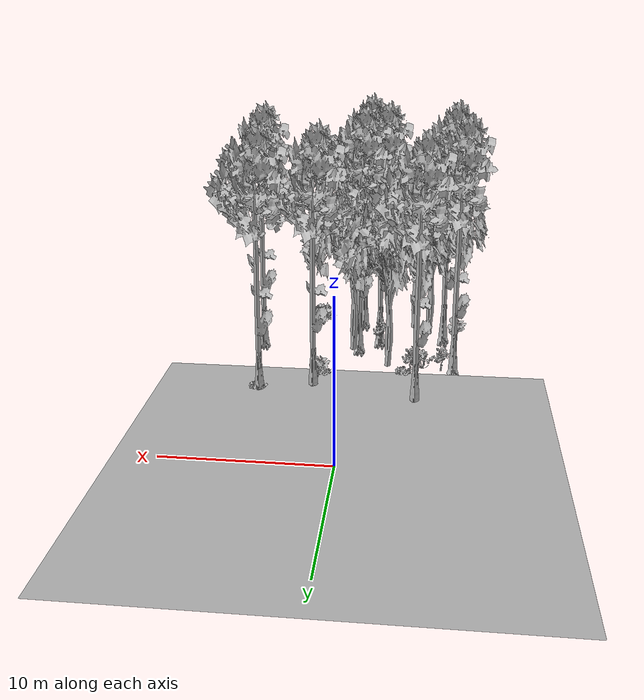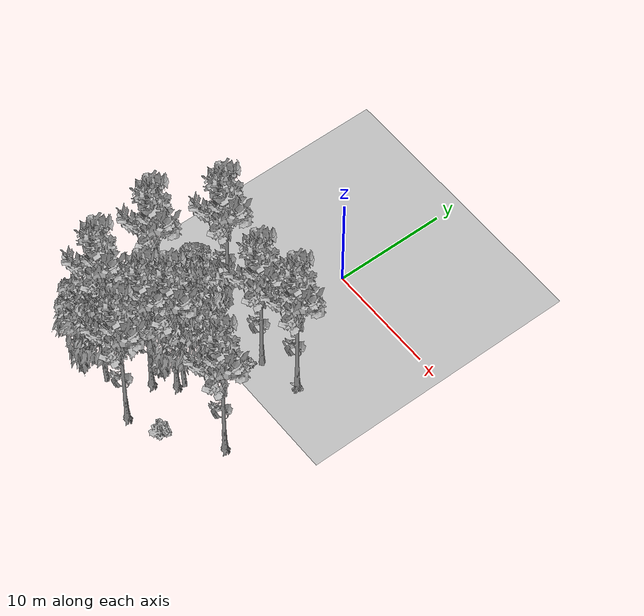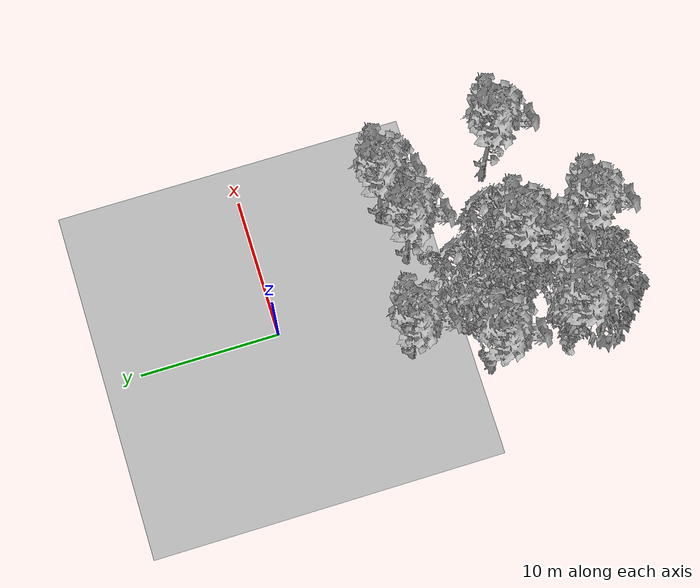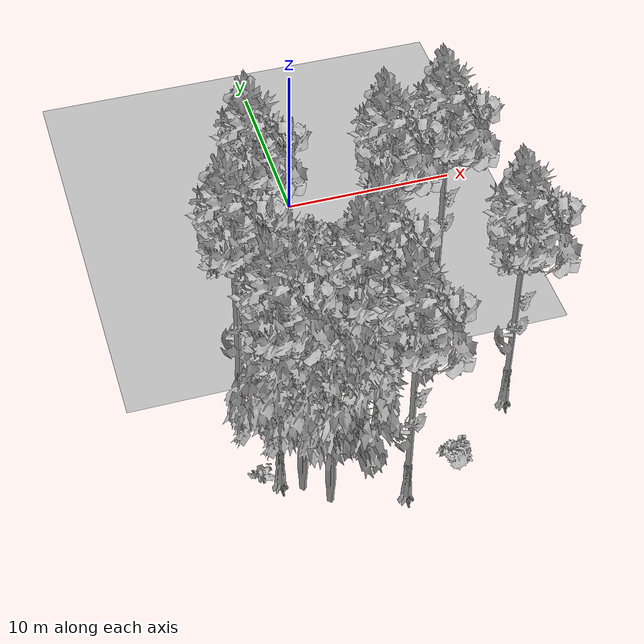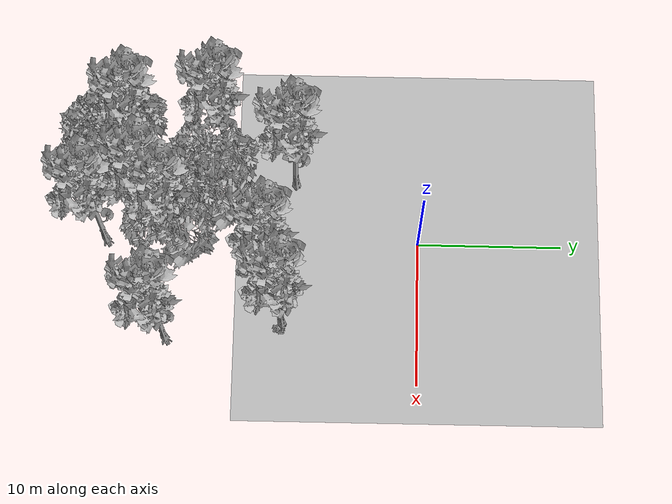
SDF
<sdf version="1.7">
 <world name="default">
  <model name="ground_plane">
   <static>1</static>
   <link name="link">
    <collision name="collision">
     <pose>-50 0 0 0 -0 0</pose>
     <geometry><plane><normal>0 0 1</normal><size>80 80</size></plane></geometry>
     <surface><contact><ode><min_depth>0.01</min_depth><max_vel>0</max_vel></ode></contact></surface>
    </collision>
    <visual name="grass">
     <cast_shadows>0</cast_shadows>
     <geometry>
      <mesh>
       <scale>0.46714285714285714 0.46714285714285714 0.1</scale>
       <uri>file://grass_plane/meshes/grass_plane.dae</uri>
      </mesh>
     </geometry>
    </visual>
   </link>
  </model>
  <model name="Tree 26">
   <static>1</static>
   <pose>0.0009870731061454308 -16.82924910509592 0 1.57079 -0 0</pose>
   <link name="link">
    <collision name="collision">
     <geometry><mesh><scale>3.5 5 3.5</scale><uri>model://tree_9/meshes/tree_9.obj</uri></mesh></geometry>
    </collision>
    <visual name="visual">
     <geometry><mesh><scale>3.5 5 3.5</scale><uri>model://tree_9/meshes/tree_9.obj</uri></mesh></geometry>
    </visual>
   </link>
  </model>
  <model name="Tree 59">
   <static>1</static>
   <pose>5.884309088869131 -9.277765575698915 0 1.57079 -0 0</pose>
   <link name="link">
    <collision name="collision">
     <geometry><mesh><scale>3.5 5 3.5</scale><uri>model://tree_9/meshes/tree_9.obj</uri></mesh></geometry>
    </collision>
    <visual name="visual">
     <geometry><mesh><scale>3.5 5 3.5</scale><uri>model://tree_9/meshes/tree_9.obj</uri></mesh></geometry>
    </visual>
   </link>
  </model>
  <model name="Tree 60">
   <static>1</static>
   <pose>-5.995851440688185 -19.20577058347348 0 1.57079 -0 0</pose>
   <link name="link">
    <collision name="collision">
     <geometry><mesh><scale>3.5 5 3.5</scale><uri>model://tree_9/meshes/tree_9.obj</uri></mesh></geometry>
    </collision>
    <visual name="visual">
     <geometry><mesh><scale>3.5 5 3.5</scale><uri>model://tree_9/meshes/tree_9.obj</uri></mesh></geometry>
    </visual>
   </link>
  </model>
  <model name="Tree 65">
   <static>1</static>
   <pose>6.968391887481246 -17.275006311689687 0 1.57079 -0 0</pose>
   <link name="link">
    <collision name="collision">
     <geometry><mesh><scale>3.5 5 3.5</scale><uri>model://tree_9/meshes/tree_9.obj</uri></mesh></geometry>
    </collision>
    <visual name="visual">
     <geometry><mesh><scale>3.5 5 3.5</scale><uri>model://tree_9/meshes/tree_9.obj</uri></mesh></geometry>
    </visual>
   </link>
  </model>
  <model name="Tree 121">
   <static>1</static>
   <pose>-2.307308478577447 -13.754119175256207 0 1.57079 -0 0</pose>
   <link name="link">
    <collision name="collision">
     <geometry><mesh><scale>3.5 5 3.5</scale><uri>model://tree_2/meshes/tree_2.obj</uri></mesh></geometry>
    </collision>
    <visual name="visual">
     <geometry><mesh><scale>3.5 5 3.5</scale><uri>model://tree_2/meshes/tree_2.obj</uri></mesh></geometry>
    </visual>
   </link>
  </model>
  <model name="Tree 299">
   <static>1</static>
   <pose>-5.051041469671517 -19.847219347789313 0 1.57079 -0 0</pose>
   <link name="link">
    <collision name="collision">
     <geometry><mesh><scale>3.5 5 3.5</scale><uri>model://tree_2/meshes/tree_2.obj</uri></mesh></geometry>
    </collision>
    <visual name="visual">
     <geometry><mesh><scale>3.5 5 3.5</scale><uri>model://tree_2/meshes/tree_2.obj</uri></mesh></geometry>
    </visual>
   </link>
  </model>
  <model name="Tree 310">
   <static>1</static>
   <pose>-6.642519987360181 -13.585602545557833 0 1.57079 -0 0</pose>
   <link name="link">
    <collision name="collision">
     <geometry><mesh><scale>3.5 5 3.5</scale><uri>model://tree_9/meshes/tree_9.obj</uri></mesh></geometry>
    </collision>
    <visual name="visual">
     <geometry><mesh><scale>3.5 5 3.5</scale><uri>model://tree_9/meshes/tree_9.obj</uri></mesh></geometry>
    </visual>
   </link>
  </model>
  <model name="Tree 361">
   <static>1</static>
   <pose>-0.03242168893636688 -21.68072332743895 0 1.57079 -0 0</pose>
   <link name="link">
    <collision name="collision">
     <geometry><mesh><scale>3.5 5 3.5</scale><uri>model://tree_9/meshes/tree_9.obj</uri></mesh></geometry>
    </collision>
    <visual name="visual">
     <geometry><mesh><scale>3.5 5 3.5</scale><uri>model://tree_9/meshes/tree_9.obj</uri></mesh></geometry>
    </visual>
   </link>
  </model>
  <model name="Tree 362">
   <static>1</static>
   <pose>2.4853112616513116 -10.199438479234963 0 1.57079 -0 0</pose>
   <link name="link">
    <collision name="collision">
     <geometry><mesh><scale>3.5 5 3.5</scale><uri>model://tree_9/meshes/tree_9.obj</uri></mesh></geometry>
    </collision>
    <visual name="visual">
     <geometry><mesh><scale>3.5 5 3.5</scale><uri>model://tree_9/meshes/tree_9.obj</uri></mesh></geometry>
    </visual>
   </link>
  </model>
  <model name="Tree 396">
   <static>1</static>
   <pose>-4.173526317931909 -8.537345553184661 0 1.57079 -0 0</pose>
   <link name="link">
    <collision name="collision">
     <geometry><mesh><scale>3.5 5 3.5</scale><uri>model://tree_9/meshes/tree_9.obj</uri></mesh></geometry>
    </collision>
    <visual name="visual">
     <geometry><mesh><scale>3.5 5 3.5</scale><uri>model://tree_9/meshes/tree_9.obj</uri></mesh></geometry>
    </visual>
   </link>
  </model>
  <model name="Tree 512">
   <static>1</static>
   <pose>-3.9225323446341562 -20.953907753833594 0 1.57079 -0 0</pose>
   <link name="link">
    <collision name="collision">
     <geometry><mesh><scale>3.5 5 3.5</scale><uri>model://tree_2/meshes/tree_2.obj</uri></mesh></geometry>
    </collision>
    <visual name="visual">
     <geometry><mesh><scale>3.5 5 3.5</scale><uri>model://tree_2/meshes/tree_2.obj</uri></mesh></geometry>
    </visual>
   </link>
  </model>
  <model name="Tree 542">
   <static>1</static>
   <pose>-1.4021956238879625 -18.287844337882973 0 1.57079 -0 0</pose>
   <link name="link">
    <collision name="collision">
     <geometry><mesh><scale>3.5 5 3.5</scale><uri>model://tree_9/meshes/tree_9.obj</uri></mesh></geometry>
    </collision>
    <visual name="visual">
     <geometry><mesh><scale>3.5 5 3.5</scale><uri>model://tree_9/meshes/tree_9.obj</uri></mesh></geometry>
    </visual>
   </link>
  </model>
  <model name="Tree 628">
   <static>1</static>
   <pose>0.28042144876846464 -16.36189300185169 0 1.57079 -0 0</pose>
   <link name="link">
    <collision name="collision">
     <geometry><mesh><scale>3.5 5 3.5</scale><uri>model://tree_2/meshes/tree_2.obj</uri></mesh></geometry>
    </collision>
    <visual name="visual">
     <geometry><mesh><scale>3.5 5 3.5</scale><uri>model://tree_2/meshes/tree_2.obj</uri></mesh></geometry>
    </visual>
   </link>
  </model>
  <model name="Bush 59">
   <static>1</static>
   <pose>2.0459940869207855 -12.095789299446437 0 1.57079 -0 0</pose>
   <link name="link">
    <collision name="collision">
     <geometry><mesh><scale>2 2 2</scale><uri>model://bush_2/meshes/bush_2.obj</uri></mesh></geometry>
     <surface><contact><collide_without_contact>false</collide_without_contact></contact></surface>
    </collision>
    <visual name="visual">
     <geometry><mesh><scale>2 2 2</scale><uri>model://bush_2/meshes/bush_2.obj</uri></mesh></geometry>
    </visual>
   </link>
  </model>
  <model name="Bush 81">
   <static>1</static>
   <pose>-3.7391064664636104 -12.847051210841272 0 1.57079 -0 0</pose>
   <link name="link">
    <collision name="collision">
     <geometry><mesh><scale>2 2 2</scale><uri>model://bush_5/meshes/bush_5.obj</uri></mesh></geometry>
     <surface><contact><collide_without_contact>false</collide_without_contact></contact></surface>
    </collision>
    <visual name="visual">
     <geometry><mesh><scale>2 2 2</scale><uri>model://bush_5/meshes/bush_5.obj</uri></mesh></geometry>
    </visual>
   </link>
  </model>
  <model name="Bush 159">
   <static>1</static>
   <pose>-1.4637272482539458 -17.57951158159503 0 1.57079 -0 0</pose>
   <link name="link">
    <collision name="collision">
     <geometry><mesh><scale>2 2 2</scale><uri>model://bush_5/meshes/bush_5.obj</uri></mesh></geometry>
     <surface><contact><collide_without_contact>false</collide_without_contact></contact></surface>
    </collision>
    <visual name="visual">
     <geometry><mesh><scale>2 2 2</scale><uri>model://bush_5/meshes/bush_5.obj</uri></mesh></geometry>
    </visual>
   </link>
  </model>
  <model name="Bush 218">
   <static>1</static>
   <pose>2.343376536468675 -11.339931885494039 0 1.57079 -0 0</pose>
   <link name="link">
    <collision name="collision">
     <geometry><mesh><scale>2 2 2</scale><uri>model://bush_0/meshes/bush_0.obj</uri></mesh></geometry>
     <surface><contact><collide_without_contact>false</collide_without_contact></contact></surface>
    </collision>
    <visual name="visual">
     <geometry><mesh><scale>2 2 2</scale><uri>model://bush_0/meshes/bush_0.obj</uri></mesh></geometry>
    </visual>
   </link>
  </model>
  <model name="Bush 250">
   <static>1</static>
   <pose>6.035169838632946 -9.45876517908701 0 1.57079 -0 0</pose>
   <link name="link">
    <collision name="collision">
     <geometry><mesh><scale>2 2 2</scale><uri>model://bush_2/meshes/bush_2.obj</uri></mesh></geometry>
     <surface><contact><collide_without_contact>false</collide_without_contact></contact></surface>
    </collision>
    <visual name="visual">
     <geometry><mesh><scale>2 2 2</scale><uri>model://bush_2/meshes/bush_2.obj</uri></mesh></geometry>
    </visual>
   </link>
  </model>
  <model name="Bush 356">
   <static>1</static>
   <pose>-4.553361787366498 -13.527675570890871 0 1.57079 -0 0</pose>
   <link name="link">
    <collision name="collision">
     <geometry><mesh><scale>2 2 2</scale><uri>model://bush_4/meshes/bush_4.obj</uri></mesh></geometry>
     <surface><contact><collide_without_contact>false</collide_without_contact></contact></surface>
    </collision>
    <visual name="visual">
     <geometry><mesh><scale>2 2 2</scale><uri>model://bush_4/meshes/bush_4.obj</uri></mesh></geometry>
    </visual>
   </link>
  </model>
  <model name="Bush 391">
   <static>1</static>
   <pose>-5.830947724070995 -13.1993655413536 0 1.57079 -0 0</pose>
   <link name="link">
    <collision name="collision">
     <geometry><mesh><scale>2 2 2</scale><uri>model://bush_5/meshes/bush_5.obj</uri></mesh></geometry>
     <surface><contact><collide_without_contact>false</collide_without_contact></contact></surface>
    </collision>
    <visual name="visual">
     <geometry><mesh><scale>2 2 2</scale><uri>model://bush_5/meshes/bush_5.obj</uri></mesh></geometry>
    </visual>
   </link>
  </model>
  <model name="Bush 450">
   <static>1</static>
   <pose>3.0096092795882328 -20.749585151443945 0 1.57079 -0 0</pose>
   <link name="link">
    <collision name="collision">
     <geometry><mesh><scale>2 2 2</scale><uri>model://bush_1/meshes/bush_1.obj</uri></mesh></geometry>
     <surface><contact><collide_without_contact>false</collide_without_contact></contact></surface>
    </collision>
    <visual name="visual">
     <geometry><mesh><scale>2 2 2</scale><uri>model://bush_1/meshes/bush_1.obj</uri></mesh></geometry>
    </visual>
   </link>
  </model>
  <model name="Bush 451">
   <static>1</static>
   <pose>-6.811831152510056 -19.04984371779524 0 1.57079 -0 0</pose>
   <link name="link">
    <collision name="collision">
     <geometry><mesh><scale>2 2 2</scale><uri>model://bush_0/meshes/bush_0.obj</uri></mesh></geometry>
     <surface><contact><collide_without_contact>false</collide_without_contact></contact></surface>
    </collision>
    <visual name="visual">
     <geometry><mesh><scale>2 2 2</scale><uri>model://bush_0/meshes/bush_0.obj</uri></mesh></geometry>
    </visual>
   </link>
  </model>
  <model name="Bush 508">
   <static>1</static>
   <pose>-3.3433559483117463 -12.655175301791559 0 1.57079 -0 0</pose>
   <link name="link">
    <collision name="collision">
     <geometry><mesh><scale>2 2 2</scale><uri>model://bush_2/meshes/bush_2.obj</uri></mesh></geometry>
     <surface><contact><collide_without_contact>false</collide_without_contact></contact></surface>
    </collision>
    <visual name="visual">
     <geometry><mesh><scale>2 2 2</scale><uri>model://bush_2/meshes/bush_2.obj</uri></mesh></geometry>
    </visual>
   </link>
  </model>
 </world>
</sdf>
